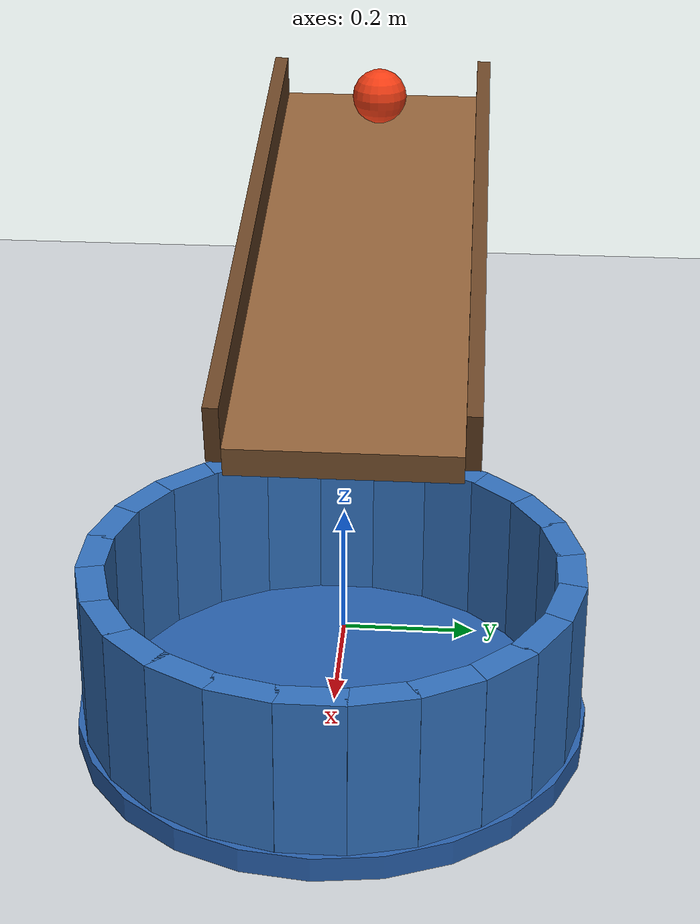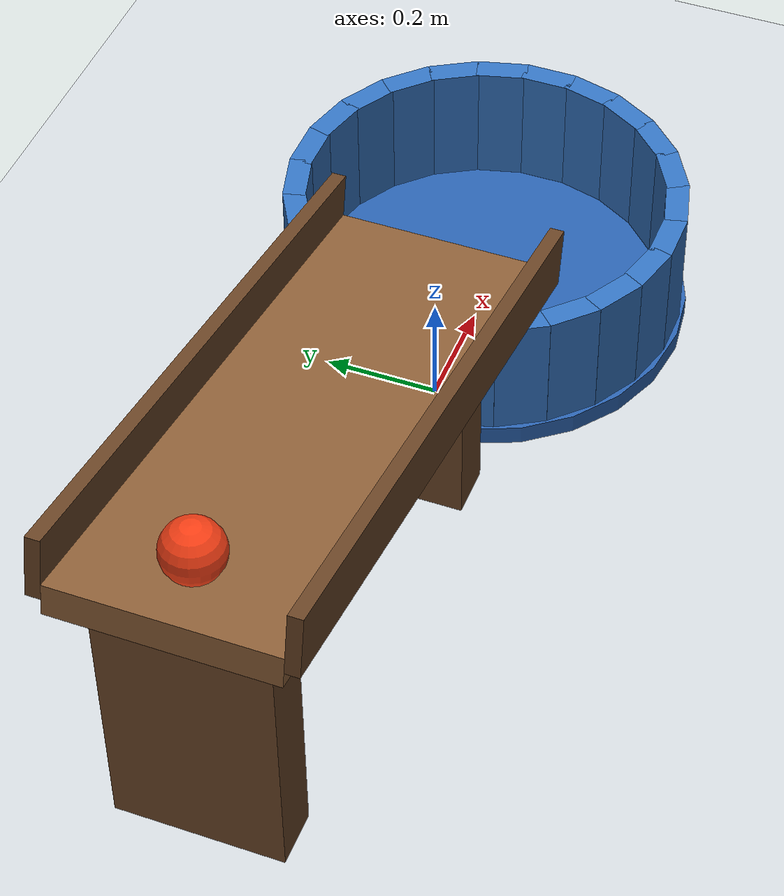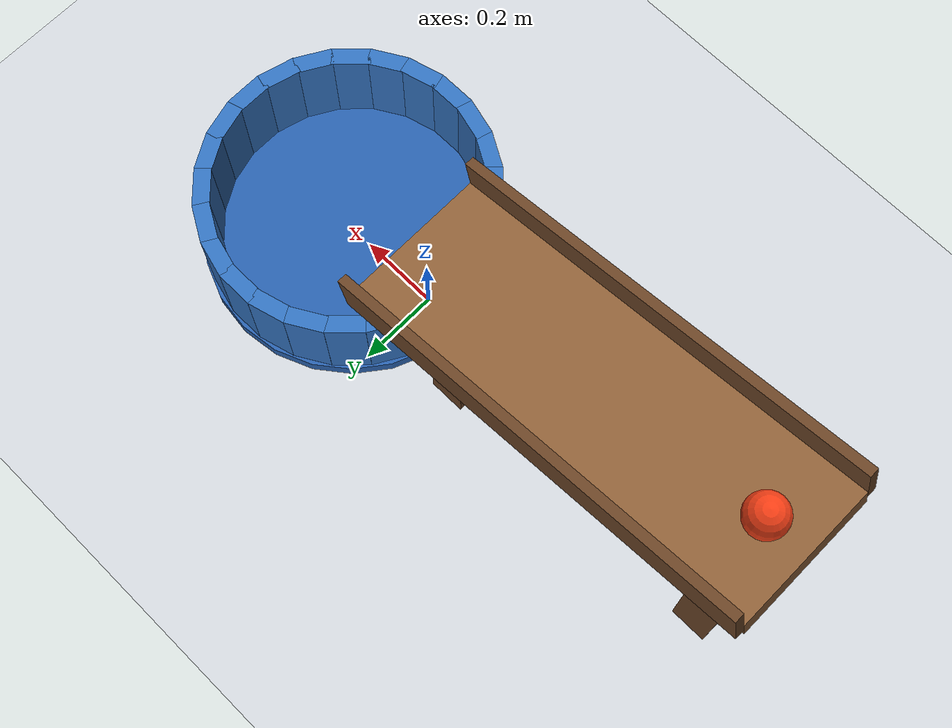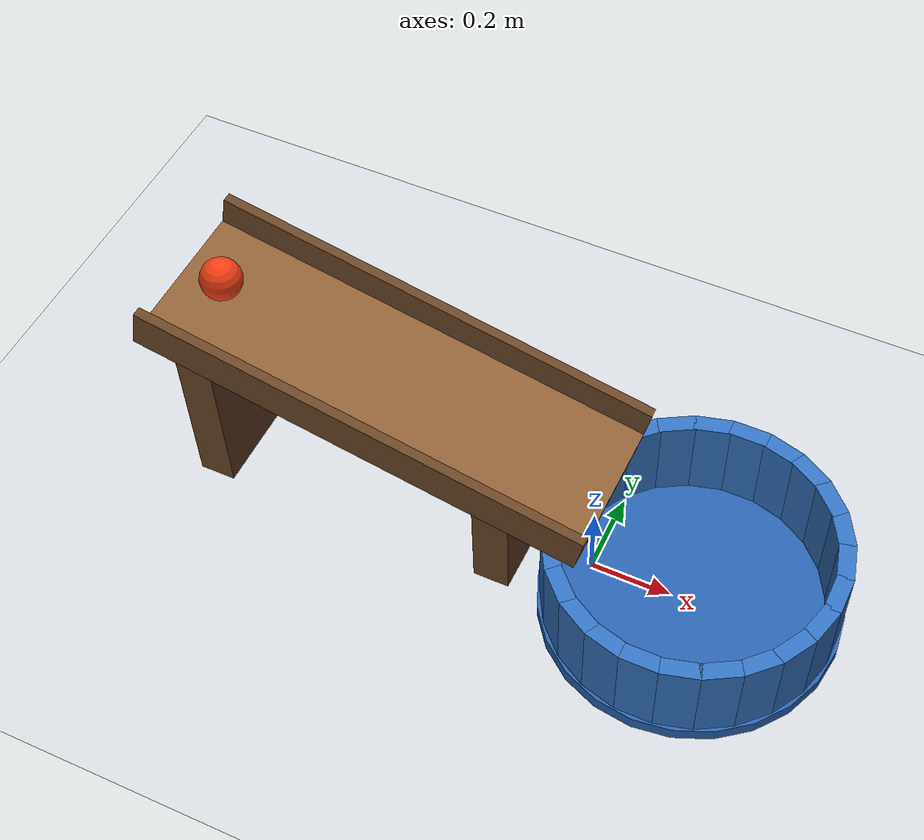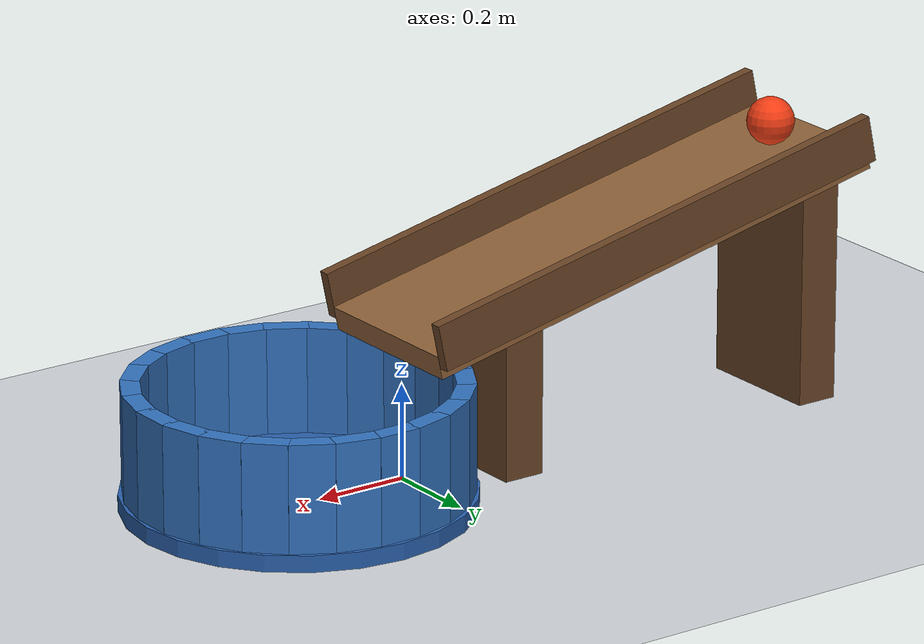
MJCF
<mujoco model="ball_rolls_into_cup">
  <compiler angle="degree"/>
  <option timestep="0.002" gravity="0 0 -9.81" integrator="implicitfast" cone="elliptic" iterations="80"/>

  <visual>
    <global azimuth="135" elevation="-25"/>
    <headlight ambient="0.35 0.35 0.35" diffuse="0.65 0.65 0.65" specular="0.2 0.2 0.2"/>
  </visual>

  <worldbody>
    <light name="overhead" pos="-0.4 -1.5 3" dir="0.1 0.3 -1" directional="true"/>
    <camera name="overview" pos="1.4 -2.7 1.8" xyaxes="0.8619 0.5071 0 -0.226 0.384 0.895"/>

    <geom name="floor" type="plane" size="4 4 0.1" rgba="0.82 0.84 0.86 1" friction="0.9 0.005 0.005" condim="6"/>

    <!-- The ramp slopes downward toward +x. Its lower end overhangs the cup. -->
    <body name="ramp" pos="-0.503179 0 0.409898" quat="0.994521895 0 0.104528463 0">
      <geom name="ramp_surface" type="box" size="0.55 0.18 0.025" rgba="0.56 0.38 0.22 1" friction="0.9 0.005 0.0003" condim="6" solref="0.01 1"/>
      <geom name="ramp_rail_left" type="box" pos="0 0.192 0.05" size="0.55 0.012 0.05" rgba="0.42 0.27 0.15 1" friction="0.9 0.005 0.0003" condim="6"/>
      <geom name="ramp_rail_right" type="box" pos="0 -0.192 0.05" size="0.55 0.012 0.05" rgba="0.42 0.27 0.15 1" friction="0.9 0.005 0.0003" condim="6"/>
    </body>

    <geom name="ramp_support_upper" type="box" pos="-0.95 0 0.237" size="0.045 0.14 0.237" rgba="0.42 0.27 0.15 1"/>
    <geom name="ramp_support_lower" type="box" pos="-0.20 0 0.16" size="0.045 0.14 0.16" rgba="0.42 0.27 0.15 1"/>

    <!-- A solid bottom and overlapping wall segments make an open, hollow cup. -->
    <body name="cup" pos="0.25 0 0">
      <geom name="cup_bottom" type="cylinder" pos="0 0 0.0175" size="0.36 0.0175" rgba="0.16 0.38 0.68 1" friction="1 0.01 0.005" condim="6" solref="0.01 1"/>
      <geom name="cup_wall_00" type="box" pos="0.33 0 0.1475" euler="0 0 0" size="0.02 0.046 0.1125" rgba="0.20 0.45 0.75 1" friction="1 0.01 0.005" condim="6" solref="0.01 1"/>
      <geom name="cup_wall_01" type="box" pos="0.318755 0.085410 0.1475" euler="0 0 15" size="0.02 0.046 0.1125" rgba="0.20 0.45 0.75 1" friction="1 0.01 0.005" condim="6" solref="0.01 1"/>
      <geom name="cup_wall_02" type="box" pos="0.285788 0.165 0.1475" euler="0 0 30" size="0.02 0.046 0.1125" rgba="0.20 0.45 0.75 1" friction="1 0.01 0.005" condim="6" solref="0.01 1"/>
      <geom name="cup_wall_03" type="box" pos="0.233345 0.233345 0.1475" euler="0 0 45" size="0.02 0.046 0.1125" rgba="0.20 0.45 0.75 1" friction="1 0.01 0.005" condim="6" solref="0.01 1"/>
      <geom name="cup_wall_04" type="box" pos="0.165 0.285788 0.1475" euler="0 0 60" size="0.02 0.046 0.1125" rgba="0.20 0.45 0.75 1" friction="1 0.01 0.005" condim="6" solref="0.01 1"/>
      <geom name="cup_wall_05" type="box" pos="0.085410 0.318755 0.1475" euler="0 0 75" size="0.02 0.046 0.1125" rgba="0.20 0.45 0.75 1" friction="1 0.01 0.005" condim="6" solref="0.01 1"/>
      <geom name="cup_wall_06" type="box" pos="0 0.33 0.1475" euler="0 0 90" size="0.02 0.046 0.1125" rgba="0.20 0.45 0.75 1" friction="1 0.01 0.005" condim="6" solref="0.01 1"/>
      <geom name="cup_wall_07" type="box" pos="-0.085410 0.318755 0.1475" euler="0 0 105" size="0.02 0.046 0.1125" rgba="0.20 0.45 0.75 1" friction="1 0.01 0.005" condim="6" solref="0.01 1"/>
      <geom name="cup_wall_08" type="box" pos="-0.165 0.285788 0.1475" euler="0 0 120" size="0.02 0.046 0.1125" rgba="0.20 0.45 0.75 1" friction="1 0.01 0.005" condim="6" solref="0.01 1"/>
      <geom name="cup_wall_09" type="box" pos="-0.233345 0.233345 0.1475" euler="0 0 135" size="0.02 0.046 0.1125" rgba="0.20 0.45 0.75 1" friction="1 0.01 0.005" condim="6" solref="0.01 1"/>
      <geom name="cup_wall_10" type="box" pos="-0.285788 0.165 0.1475" euler="0 0 150" size="0.02 0.046 0.1125" rgba="0.20 0.45 0.75 1" friction="1 0.01 0.005" condim="6" solref="0.01 1"/>
      <geom name="cup_wall_11" type="box" pos="-0.318755 0.085410 0.1475" euler="0 0 165" size="0.02 0.046 0.1125" rgba="0.20 0.45 0.75 1" friction="1 0.01 0.005" condim="6" solref="0.01 1"/>
      <geom name="cup_wall_12" type="box" pos="-0.33 0 0.1475" euler="0 0 180" size="0.02 0.046 0.1125" rgba="0.20 0.45 0.75 1" friction="1 0.01 0.005" condim="6" solref="0.01 1"/>
      <geom name="cup_wall_13" type="box" pos="-0.318755 -0.085410 0.1475" euler="0 0 195" size="0.02 0.046 0.1125" rgba="0.20 0.45 0.75 1" friction="1 0.01 0.005" condim="6" solref="0.01 1"/>
      <geom name="cup_wall_14" type="box" pos="-0.285788 -0.165 0.1475" euler="0 0 210" size="0.02 0.046 0.1125" rgba="0.20 0.45 0.75 1" friction="1 0.01 0.005" condim="6" solref="0.01 1"/>
      <geom name="cup_wall_15" type="box" pos="-0.233345 -0.233345 0.1475" euler="0 0 225" size="0.02 0.046 0.1125" rgba="0.20 0.45 0.75 1" friction="1 0.01 0.005" condim="6" solref="0.01 1"/>
      <geom name="cup_wall_16" type="box" pos="-0.165 -0.285788 0.1475" euler="0 0 240" size="0.02 0.046 0.1125" rgba="0.20 0.45 0.75 1" friction="1 0.01 0.005" condim="6" solref="0.01 1"/>
      <geom name="cup_wall_17" type="box" pos="-0.085410 -0.318755 0.1475" euler="0 0 255" size="0.02 0.046 0.1125" rgba="0.20 0.45 0.75 1" friction="1 0.01 0.005" condim="6" solref="0.01 1"/>
      <geom name="cup_wall_18" type="box" pos="0 -0.33 0.1475" euler="0 0 270" size="0.02 0.046 0.1125" rgba="0.20 0.45 0.75 1" friction="1 0.01 0.005" condim="6" solref="0.01 1"/>
      <geom name="cup_wall_19" type="box" pos="0.085410 -0.318755 0.1475" euler="0 0 285" size="0.02 0.046 0.1125" rgba="0.20 0.45 0.75 1" friction="1 0.01 0.005" condim="6" solref="0.01 1"/>
      <geom name="cup_wall_20" type="box" pos="0.165 -0.285788 0.1475" euler="0 0 300" size="0.02 0.046 0.1125" rgba="0.20 0.45 0.75 1" friction="1 0.01 0.005" condim="6" solref="0.01 1"/>
      <geom name="cup_wall_21" type="box" pos="0.233345 -0.233345 0.1475" euler="0 0 315" size="0.02 0.046 0.1125" rgba="0.20 0.45 0.75 1" friction="1 0.01 0.005" condim="6" solref="0.01 1"/>
      <geom name="cup_wall_22" type="box" pos="0.285788 -0.165 0.1475" euler="0 0 330" size="0.02 0.046 0.1125" rgba="0.20 0.45 0.75 1" friction="1 0.01 0.005" condim="6" solref="0.01 1"/>
      <geom name="cup_wall_23" type="box" pos="0.318755 -0.085410 0.1475" euler="0 0 345" size="0.02 0.046 0.1125" rgba="0.20 0.45 0.75 1" friction="1 0.01 0.005" condim="6" solref="0.01 1"/>
    </body>

    <!-- Gravity starts the ball; low ramp rolling resistance permits rolling. -->
    <body name="ball" pos="-0.927544 0 0.577797">
      <freejoint name="ball_free"/>
      <geom name="ball" type="sphere" size="0.05" mass="0.1" rgba="0.95 0.24 0.08 1" friction="0.9 0.005 0.0003" condim="6" solref="0.01 1"/>
    </body>
  </worldbody>

  <keyframe>
    <key name="start" qpos="-0.927544 0 0.577797 1 0 0 0" qvel="0 0 0 0 0 0"/>
  </keyframe>
</mujoco>
